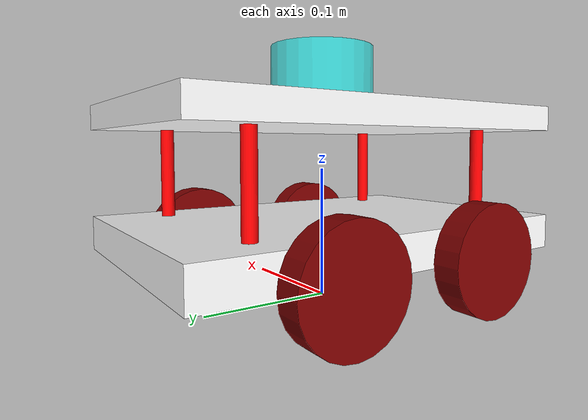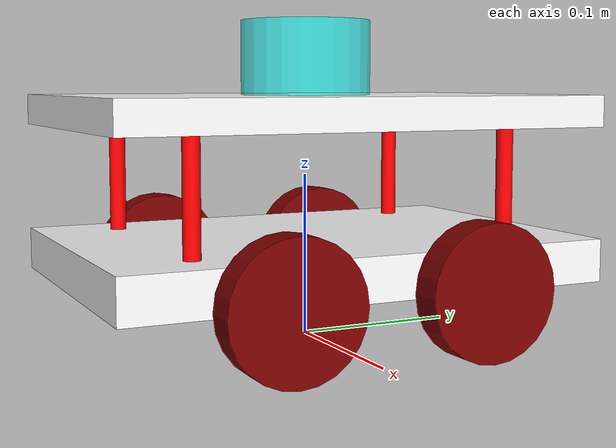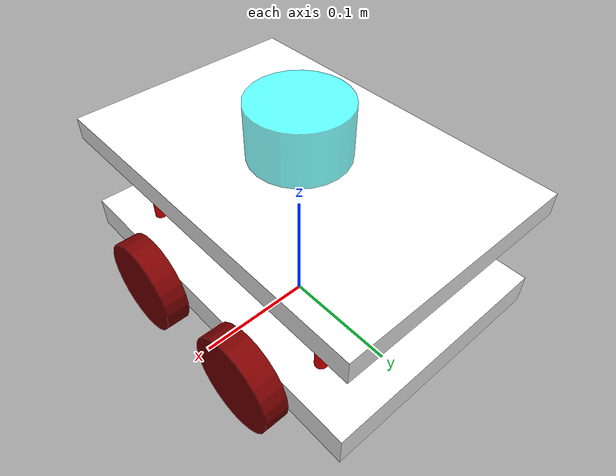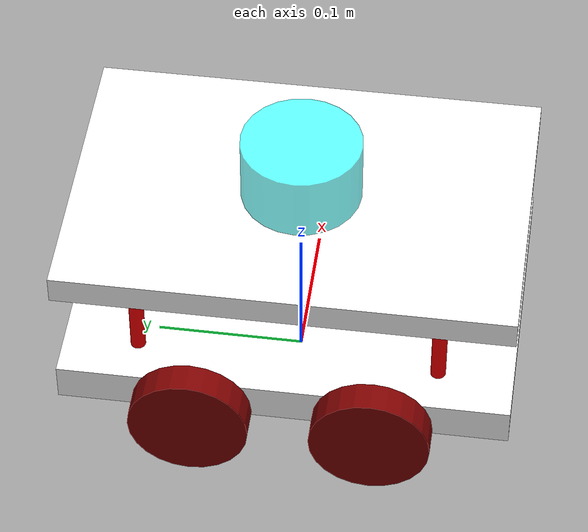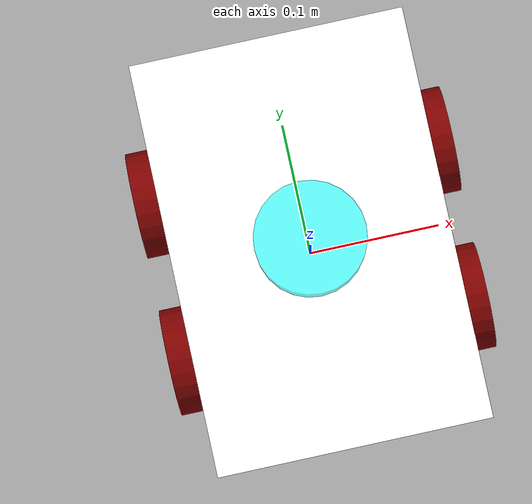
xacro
<?xml version='1.0'?>
<robot name="box_ropot" xmlns:xacro="http://www.ros.org/wiki/xacro">
<xacro:include filename="$(find urdf_trial_discription)/urdf/plugin.gazebo" />
<link name="base_link">

</link>
    <joint name="base_link_joint" type="fixed">
        <origin xyz="0.0 0.0 0.0" rpy="0.0 0.0 0.0"/>
        <parent link="base_link"/>
        <child link="base_plate"/>
        <axis xyz="0.0 0.0 0.0"/>
        <limit lower="0.0" upper="0.0" effort="0.0" velocity="0.0"/>
    </joint>
<link name="base_plate">
    <inertial>
        <origin xyz="0.0 0.0 0.0" rpy="0.0 0.0 0.0"/>
        <mass value="15.0"/>
        <inertia ixx="0.0" ixy="0.0" ixz="0.0" iyy="0.1" iyz="0.0" izz="0.0"/>
    </inertial>
    <visual name="plate_visual">
        <origin xyz="0.0 0.0 0.05" rpy="1.5707 0.0 0.0"/>
        <geometry>
            <box size=".2 .026 .3"/>
        </geometry>
        <material name="orange">
            <color rgba="1 1 1 1"/>
            <texture filename=""/>
        </material>
    </visual>
    <collision>
        <origin xyz="0.0 0.0 0.0" rpy="0.0 0.0 0.0"/>
        <geometry>
            <box size=".2 .026 .3"/>
        </geometry>
    </collision>
</link>
<link name="upper_plate">
    <inertial>
        <origin xyz="0.0 0.0 0.0" rpy="0.0 0.0 0.0"/>
        <mass value="15.0"/>
        <inertia ixx="0.0" ixy="0.0" ixz="0.0" iyy="0.0" iyz="0.0" izz="0.0"/>
    </inertial>
    <visual name="upper_plate_visual">
        <origin xyz="0.0 0.0 0.09" rpy="1.5707 0.0 0.0"/>
        <geometry>
            <box size=".2 .019 .3"/>
        </geometry>
        <material name="orange">
            <color rgba="1 1 1 1"/>
            <texture filename=""/>
        </material>
    </visual>
    <collision>
        <origin xyz="0.0 0.0 0.09" rpy="1.5707 0.0 0.0"/>

        <geometry>
            <box size=".2 .019 .3"/>
        </geometry>
    </collision>
</link>
<joint name="upper_plate_joint" type="fixed">
    <origin xyz="0.0 0.0 0.05" rpy="0 0.0 0.0"/>
    <parent link="base_link"/>
    <child link="upper_plate"/>
    <axis xyz="0.0 0.0 0.0"/>
    <limit lower="0.0" upper="0.0" effort="0.0" velocity="0.0"/>
</joint>
<link name="left__back_wheel">
    <inertial>
        <origin xyz="0.11 0.1 0.0" rpy="0 0.0 0"/>
        <mass value="0.3"/>
        <inertia ixx="0.0" ixy="0.0" ixz="0.0" iyy="0.0" iyz="0.0" izz="0.0"/>
    </inertial>
    <visual name="left__back_wheel_visual">
        <origin xyz="0.0 0.0 0.0" rpy="0 1.5707 1.5707"/>
        <geometry>
            <cylinder radius="0.04" length="0.02"/>
        </geometry>
        <material name="">
            <color rgba="125.0 0.0 0.0 1.0"/>
            <texture filename=""/>
        </material>
    </visual>
    <collision>
        <origin xyz="0.0 0.0 0.0" rpy="0 0 0.0"/>
        <geometry>
             <cylinder radius="0.04" length="0.02"/>
        </geometry>
    </collision>
</link>
<joint name="left__back_wheel_joint" type="continuous">
    <origin xyz="-0.11 -0.06 0.04" rpy="0 0.0 -1.57"/>
    <parent link="base_plate"/>
    <child link="left__back_wheel"/>
    <axis xyz="0.0 0.0 0.0"/>
    <limit lower="0.0" upper="0.0" effort="0.0" velocity="0.0"/>
</joint>

<link name="right_back_wheel">
    <inertial>
        <origin xyz="0.0 0.0 0.0" rpy="0 0.0 0.0"/>
        <mass value="0.3"/>
        <inertia ixx="0.0" ixy="0.0" ixz="0.0" iyy="0.0" iyz="0.0" izz="0.0"/>
    </inertial>
    <visual name="right_back_wheel_visual">
        <origin xyz="0.0 0.0 0.0" rpy="0 1.5707 0 "/>
        <geometry>
               <cylinder radius="0.04" length="0.02"/>

        </geometry>
        <material name="">
            <color rgba="125.0 0.0 0.0 1.0"/>
            <texture filename=""/>
        </material>
    </visual>
    <collision>
          <origin xyz="0.0 0.0 0.0" rpy="0 1.5707 0 "/>
          <geometry>
           <cylinder radius="0.04" length="0.02"/>
        </geometry>
    </collision>
</link>
<joint name="right_back_wheel_joint" type="continuous">
    <origin xyz="-0.11 0.06 0.04" rpy="0.0 0 0"/>
    <parent link="base_plate"/>
    <child link="right_back_wheel"/>
    <axis xyz="0.0 0.0 0.0"/>
    <limit lower="0.0" upper="0.0" effort="0.0" velocity="0.0"/>
</joint>
<link name="right_front_wheel">
    <inertial>
        <origin xyz="0.0 0.0 0.0" rpy="0 0.0 0.0"/>
        <mass value="0.3"/>
        <inertia ixx="0.0" ixy="0.0" ixz="0.0" iyy="0.0" iyz="0.0" izz="0.0"/>
    </inertial>
    <visual name="right_front_wheel_visual">
        <origin xyz="0.0 0.0 0.0" rpy="0 1.5707 0 "/>
        <geometry>
               <cylinder radius="0.04" length="0.02"/>

        </geometry>
        <material name="">
            <color rgba="125.0 0.0 0.0 1.0"/>
            <texture filename=""/>
        </material>
    </visual>
    <collision>
        <origin xyz="0.0 0.0 0.0" rpy="0 1.5707 0 "/>
        <geometry>
               <cylinder radius="0.04" length="0.02"/>
        </geometry>
    </collision>
</link>

<joint name="right_front_wheel_joint" type="continuous">
    <origin xyz="0.11 -0.06 0.04" rpy="0.0 0.0 0.0"/>
    <parent link="base_plate"/>
    <child link="right_front_wheel"/>
    <axis xyz="0.0 0.0 0.0"/>
    <limit lower="0.0" upper="0.0" effort="0.0" velocity="0.0"/>
</joint>

<link name="left_front_wheel">
    <inertial>
        <origin xyz="0.0 0.0 0.0" rpy="0 0.0 0.0"/>
        <mass value="0.4"/>
        <inertia ixx="0.0" ixy="0.0" ixz="0.0" iyy="0.0" iyz="0.0" izz="0.0"/>
    </inertial>
    <visual name="left_front_wheel_visual">
        <origin xyz="0.0 0.0 0.0" rpy="0 1.5707 0.0"/>
        <geometry>
            <cylinder radius="0.04" length="0.02"/>
        </geometry>
        <material name="">
            <color rgba="125.0 0.0 0.0 1.0"/>
            <texture filename=""/>
        </material>
    </visual>
    <collision>
        <origin xyz="0.0 0.0 0.0" rpy="0 1.5707 0.0"/>
        <geometry>
            <cylinder radius="0.04" length="0.02"/>
        </geometry>
    </collision>
</link>
<joint name="left_front_wheel_joint" type="continuous">
    <origin xyz="0.11 0.06 0.04" rpy="0.0 0.0 0.0"/>
    <parent link="base_plate"/>
    <child link="left_front_wheel"/>
    <axis xyz="0.0 0.0 0.0"/>
    <limit lower="0.0" upper="0.0" effort="0.0" velocity="0.0"/>
</joint>
<link name="left_back_culom">
    <inertial>
        <origin xyz="0.0  0.0 0.0" rpy="0 0.0 0.0"/>
        <mass value="0.0"/>
        <inertia ixx="0.0" ixy="0.0" ixz="0.0" iyy="0.0" iyz="0.0" izz="0.0"/>
    </inertial>
    <visual name="">
        <origin xyz="0.0 0.0 0.0" rpy="0 0 1.5707"/><!--.53+ .5*cylinder length-->
        <geometry>
            <cylinder radius="0.005" length="0.09"/>
        </geometry>
        <material name="left_back_culom_visual">
            <color rgba="1.0 0.0 0.0 1.0"/>
            <texture filename=""/>
        </material>
    </visual>
    <collision>
         <origin xyz="0.0 0.0 0.0" rpy="0 1.5707 1.5707"/>
         <geometry>
             <cylinder radius="0.005" length="0.08"/>
        </geometry>
    </collision>
</link>
<joint name="upper_left_back_culom_joint" type="fixed">
    <origin xyz="-0.07 -0.1 0.1" rpy="0.0 0.0 0.0"/>
    <parent link="base_plate"/>
    <child link="left_back_culom"/>
    <axis xyz="0.0 0.0 0.0"/>
    <limit lower="0.0" upper="0.0" effort="0.0" velocity="0.0"/>
</joint>

<link name="right_back_colum">
    <inertial>
        <origin xyz="0.0 0.0 0.0" rpy="0 0.0 0.0"/>
        <mass value="0.0"/>
        <inertia ixx="0.0" ixy="0.0" ixz="0.0" iyy="0.0" iyz="0.0" izz="0.0"/>
    </inertial>
    <visual name="">
        <origin xyz="0.0 0.0 0.0" rpy="0 0 1.5707 "/>
        <geometry>
            <cylinder radius="0.005" length="0.09"/>

        </geometry>
        <material name="right_back_colum_visual">
            <color rgba="1.0 0.0 0.0 1.0"/>
            <texture filename=""/>
        </material>
    </visual>
    <collision>
        <origin xyz="0.0 0.0 0.0" rpy="0 0 1.5707 "/>
        <geometry>
            <cylinder radius="0.005" length="0.09"/>
        </geometry>
    </collision>
</link>
<joint name="upper_right_back_culom_joint" type="fixed">
    <origin xyz="0.07 -.1 0.1" rpy="0.0 0.0 0.0"/>
    <parent link="base_plate"/>
    <child link="right_back_colum"/>
    <axis xyz="0.0 0.0 0.0"/>
    <limit lower="0.0" upper="0.0" effort="0.0" velocity="0.0"/>
</joint>

<link name="left__front_colum">
    <inertial>
        <origin xyz="0.0 0.0 0.0" rpy="0 0.0 0.0"/>
        <mass value="0.0"/>
        <inertia ixx="0.0" ixy="0.0" ixz="0.0" iyy="0.0" iyz="0.0" izz="0.0"/>
    </inertial>
    <visual name="">
        <origin xyz="0.0 0.0 0.0" rpy="0 0 0"/>
        <geometry>
            <cylinder radius="0.005" length="0.09"/>
        </geometry>
        <material name="left__front_colum_visual">
            <color rgba="1.0 0.0 0.0 1.0"/>
            <texture filename=""/>
        </material>
    </visual>
    <collision>
        <origin xyz="0.0 0.0 0.0" rpy="0 0 0"/>
        <geometry>
            <cylinder radius="0.005" length="0.08"/>
        </geometry>
    </collision>
</link>
<joint name="upper_left_front_culom_joint" type="fixed">
    <origin xyz="0.07 .1 0.1" rpy="0.0 0.0 0.0"/>
    <parent link="base_plate"/>
    <child link="left__front_colum"/>
    <axis xyz="0.0 0.0 0.0"/>
    <limit lower="0.0" upper="0.0" effort="0.0" velocity="0.0"/>
</joint>
<link name="right_front_colum">
    <inertial>
        <origin xyz="0.0 0.0 0.0" rpy="0 0.0 0.0"/>
        <mass value="0.0"/>
        <inertia ixx="0.0" ixy="0.0" ixz="0.0" iyy="0.0" iyz="0.0" izz="0.0"/>
    </inertial>
    <visual name="">
        <origin xyz="0.0 0.0 0.0" rpy="0 0 0 "/>
        <geometry>
            <cylinder radius="0.005" length="0.09"/>

        </geometry>
        <material name="right_front_colum_visual">
            <color rgba="1.0 0.0 0.0 1.0"/>
            <texture filename=""/>
        </material>
    </visual>
    <collision>
        <origin xyz="0.0 0.0 0.0" rpy="0 0 0.0"/>
        <geometry>
            <cylinder radius="0.005" length="0.08"/>
        </geometry>
    </collision>
</link>
<joint name="upper_right_front_culom_joint" type="fixed">
    <origin xyz="-0.07 .1 0.1" rpy="0.0 0.0 0.0"/>
    <parent link="base_plate"/>
    <child link="right_front_colum"/>
    <axis xyz="0.0 0.0 0.0"/>
    <limit lower="0.0" upper="0.0" effort="0.0" velocity="0.0"/>
</joint>

<link name="hokuyo">
    <inertial>
        <origin xyz="0.0 0.0 0.0" rpy="0.0 0.0 0.0"/>
        <mass value="0.0"/>
        <inertia ixx="0.0" ixy="0.0" ixz="0.0" iyy="0.0" iyz="0.0" izz="0.0"/>
    </inertial>
    <visual name="hokuyo_visual">
        <origin xyz="0.0 .0 0.0" rpy="0.0 0.0 0.0"/>
        <geometry>
           <cylinder radius=".04" length=".05"/>

        </geometry>
        <material name="">
            <color rgba="0 1 1 .6"/>
            <texture filename=""/>
        </material>
    </visual>
    <collision>
        <origin xyz="0.0 .145 0.1" rpy="0.0 0.0 0.0"/>
        <geometry>
            <box size="0.05 0.05 0.05"/>
        </geometry>
    </collision>
</link>
<joint name="hokuyo_joint" type="fixed">
    <origin xyz="0.0 .0 0.12" rpy="0.0 0.0 0.0"/>
    <parent link="upper_plate"/>
    <child link="hokuyo"/>
    <axis xyz="0.0 0.0 0.0"/>
    <limit lower="0.0" upper="0.0" effort="0.0" velocity="0.0"/>
</joint>

</robot>
